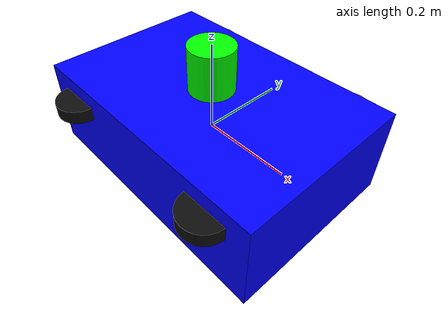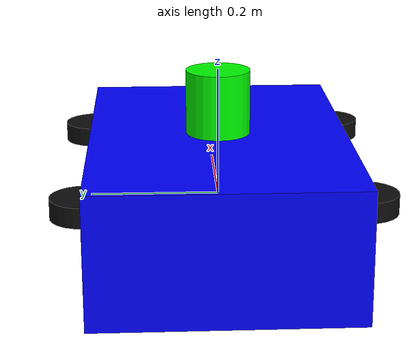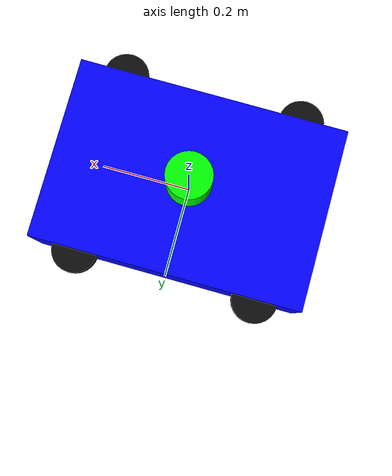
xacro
<?xml version="1.0"?>
<robot name="ae86_robot" xmlns:xacro="http://ros.org/wiki/xacro">

  <!-- Base link -->
  <link name="base_link">
    <visual>
      <geometry>
        <box size="0.6 0.4 0.2"/>
      </geometry>
      <material name="blue">
        <color rgba="0 0 1 1"/>
      </material>
    </visual>
    <collision>
      <geometry>
        <box size="0.6 0.4 0.2"/>
      </geometry>
    </collision>
    <inertial>
      <mass value="5.0"/>
      <inertia ixx="0.1" iyy="0.1" izz="0.1" ixy="0" ixz="0" iyz="0"/>
    </inertial>
  </link>

  <!-- Macro for wheels -->
  <xacro:macro name="wheel" params="name x y">
    <link name="${name}">
      <visual>
        <geometry>
          <cylinder radius="0.05" length="0.03"/>
        </geometry>
        <material name="black">
          <color rgba="0.05 0.05 0.05 1"/>
        </material>
      </visual>
      <collision>
        <geometry>
          <cylinder radius="0.05" length="0.03"/>
        </geometry>
      </collision>
      <inertial>
        <mass value="1.0"/>
        <inertia ixx="0.001" iyy="0.001" izz="0.001" ixy="0" ixz="0" iyz="0"/>
      </inertial>
    </link>

    <joint name="${name}_joint" type="continuous">
      <parent link="base_link"/>
      <child link="${name}"/>
      <origin xyz="${x} ${y} 0.05" rpy="0 0 0"/>
      <axis xyz="0 0 1"/>
    </joint>
  </xacro:macro>

  <!-- 4 wheels -->
  <xacro:wheel name="front_left_wheel"  x="0.2"  y="0.2"/>
  <xacro:wheel name="front_right_wheel" x="0.2"  y="-0.2"/>
  <xacro:wheel name="rear_left_wheel"   x="-0.2" y="0.2"/>
  <xacro:wheel name="rear_right_wheel"  x="-0.2" y="-0.2"/>

  <!-- LiDAR sensor -->
  <link name="lidar_link">
    <visual>
      <geometry>
        <cylinder radius="0.05" length="0.1"/>
      </geometry>
      <material name="green">
        <color rgba="0 1 0 1"/>
      </material>
    </visual>
    <collision>
      <geometry>
        <cylinder radius="0.05" length="0.1"/>
      </geometry>
    </collision>
    <inertial>
      <mass value="0.5"/>
      <inertia ixx="0.001" iyy="0.001" izz="0.001" ixy="0" ixz="0" iyz="0"/>
    </inertial>
  </link>

  <joint name="lidar_joint" type="fixed">
    <parent link="base_link"/>
    <child link="lidar_link"/>
    <origin xyz="0 0 0.15" rpy="0 0 0"/>
  </joint>

</robot>
